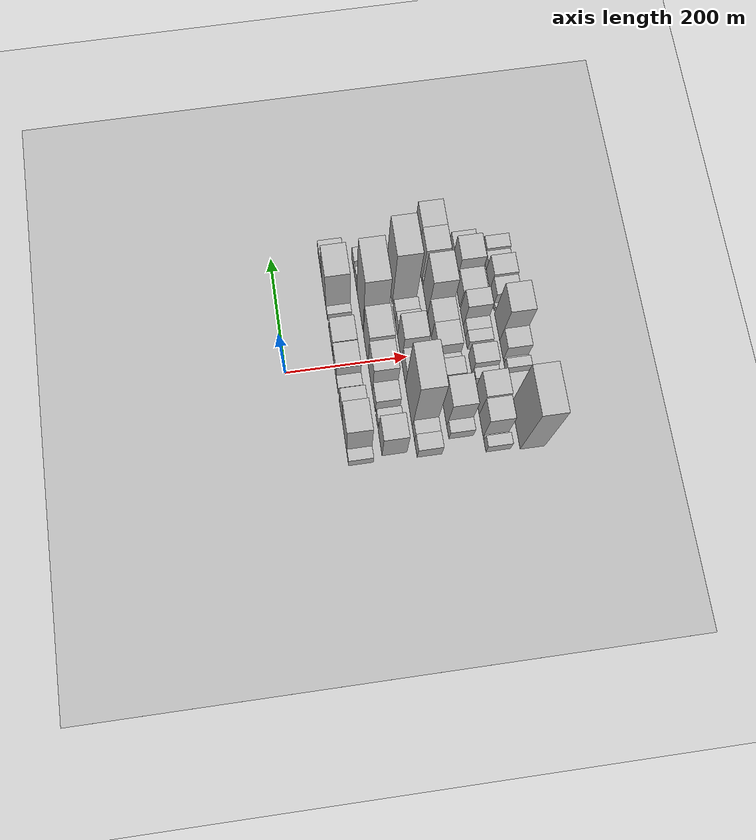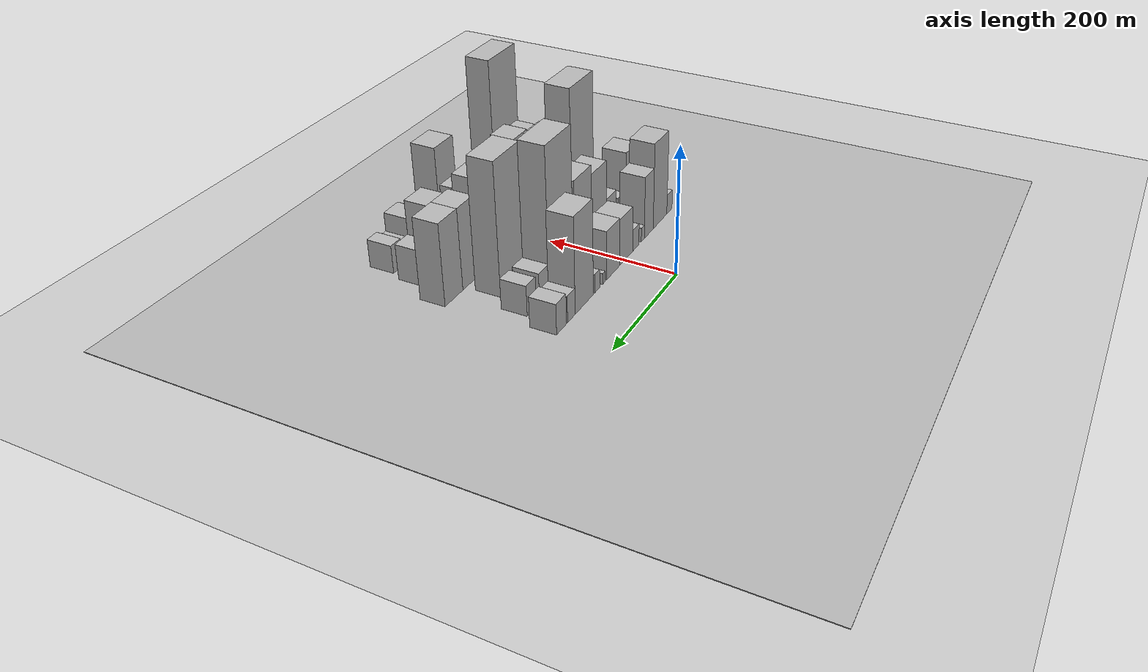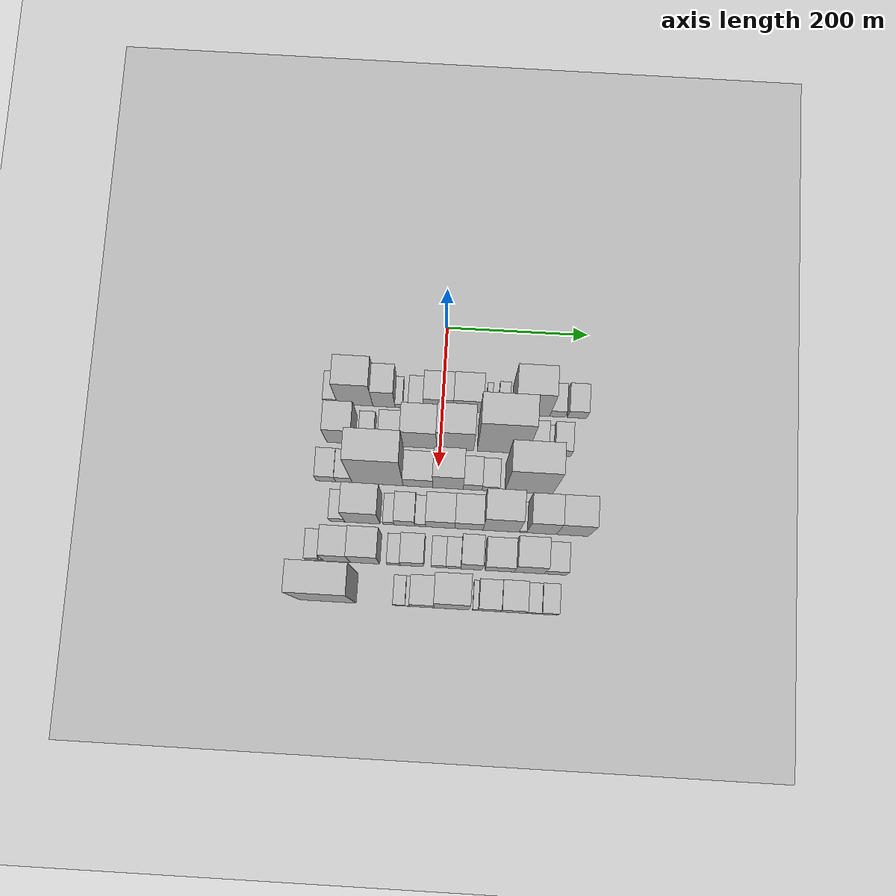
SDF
<sdf version="1.6">
 <world name="default">
  <include><name>ground_plane_1</name><uri>model://HANNAS_ground_plane</uri></include>
  <include>
   <name>ground_plane_2</name>
   <uri>model://HANNAS_ground_plane</uri>
   <pose>100 0 0  0 0 0</pose>
  </include>
  <model name="building_21">
   <static>1</static>
   <pose>100.0000 -156.7400 0 0.000000 0.000000 0.000000</pose>
   <link name="link">
    <pose>0 0 16.50 0 0 0</pose>
    <collision name="collision"><geometry><box><size>40.0000 19.6007 33.0000</size></box></geometry></collision>
    <visual name="visual">
     <cast_shadows>0</cast_shadows>
     <geometry><box><size>40.0000 19.6007 33.0000</size></box></geometry>
     <material>
      <script>
       <uri>model://HANNAS_wall/materials/scripts</uri>
       <uri>model://HANNAS_wall/materials/textures</uri>
       <name>vrc/HANNAS_wall</name>
      </script>
     </material>
    </visual>
   </link>
  </model>
  <model name="building_22">
   <static>1</static>
   <pose>100.0000 -122.1969 0 0.000000 0.000000 0.000000</pose>
   <link name="link">
    <pose>0 0 70.50 0 0 0</pose>
    <collision name="collision"><geometry><box><size>40.0000 49.4855 141.0000</size></box></geometry></collision>
    <visual name="visual">
     <cast_shadows>0</cast_shadows>
     <geometry><box><size>40.0000 49.4855 141.0000</size></box></geometry>
     <material>
      <script>
       <uri>model://HANNAS_wall/materials/scripts</uri>
       <uri>model://HANNAS_wall/materials/textures</uri>
       <name>vrc/HANNAS_wall</name>
      </script>
     </material>
    </visual>
   </link>
  </model>
  <model name="building_23">
   <static>1</static>
   <pose>100.0000 -81.7811 0 0.000000 0.000000 0.000000</pose>
   <link name="link">
    <pose>0 0 51.00 0 0 0</pose>
    <collision name="collision"><geometry><box><size>40.0000 31.3461 102.0000</size></box></geometry></collision>
    <visual name="visual">
     <cast_shadows>0</cast_shadows>
     <geometry><box><size>40.0000 31.3461 102.0000</size></box></geometry>
     <material>
      <script>
       <uri>model://HANNAS_wall/materials/scripts</uri>
       <uri>model://HANNAS_wall/materials/textures</uri>
       <name>vrc/HANNAS_wall</name>
      </script>
     </material>
    </visual>
   </link>
  </model>
  <model name="building_24">
   <static>1</static>
   <pose>100.0000 -60.7981 0 0.000000 0.000000 0.000000</pose>
   <link name="link">
    <pose>0 0 12.00 0 0 0</pose>
    <collision name="collision"><geometry><box><size>40.0000 10.6198 24.0000</size></box></geometry></collision>
    <visual name="visual">
     <cast_shadows>0</cast_shadows>
     <geometry><box><size>40.0000 10.6198 24.0000</size></box></geometry>
     <material>
      <script>
       <uri>model://HANNAS_wall/materials/scripts</uri>
       <uri>model://HANNAS_wall/materials/textures</uri>
       <name>vrc/HANNAS_wall</name>
      </script>
     </material>
    </visual>
   </link>
  </model>
  <model name="building_25">
   <static>1</static>
   <pose>100.0000 -36.8509 0 0.000000 0.000000 0.000000</pose>
   <link name="link">
    <pose>0 0 18.00 0 0 0</pose>
    <collision name="collision"><geometry><box><size>40.0000 21.2747 36.0000</size></box></geometry></collision>
    <visual name="visual">
     <cast_shadows>0</cast_shadows>
     <geometry><box><size>40.0000 21.2747 36.0000</size></box></geometry>
     <material>
      <script>
       <uri>model://HANNAS_wall/materials/scripts</uri>
       <uri>model://HANNAS_wall/materials/textures</uri>
       <name>vrc/HANNAS_wall</name>
      </script>
     </material>
    </visual>
   </link>
  </model>
  <model name="building_26">
   <static>1</static>
   <pose>100.0000 -5.1688 0 0.000000 0.000000 0.000000</pose>
   <link name="link">
    <pose>0 0 37.50 0 0 0</pose>
    <collision name="collision"><geometry><box><size>40.0000 42.0895 75.0000</size></box></geometry></collision>
    <visual name="visual">
     <cast_shadows>0</cast_shadows>
     <geometry><box><size>40.0000 42.0895 75.0000</size></box></geometry>
     <material>
      <script>
       <uri>model://HANNAS_wall/materials/scripts</uri>
       <uri>model://HANNAS_wall/materials/textures</uri>
       <name>vrc/HANNAS_wall</name>
      </script>
     </material>
    </visual>
   </link>
  </model>
  <model name="building_27">
   <static>1</static>
   <pose>100.0000 36.4722 0 0.000000 0.000000 0.000000</pose>
   <link name="link">
    <pose>0 0 39.00 0 0 0</pose>
    <collision name="collision"><geometry><box><size>40.0000 41.1924 78.0000</size></box></geometry></collision>
    <visual name="visual">
     <cast_shadows>0</cast_shadows>
     <geometry><box><size>40.0000 41.1924 78.0000</size></box></geometry>
     <material>
      <script>
       <uri>model://HANNAS_wall/materials/scripts</uri>
       <uri>model://HANNAS_wall/materials/textures</uri>
       <name>vrc/HANNAS_wall</name>
      </script>
     </material>
    </visual>
   </link>
  </model>
  <model name="building_28">
   <static>1</static>
   <pose>100.0000 66.0425 0 0.000000 0.000000 0.000000</pose>
   <link name="link">
    <pose>0 0 9.00 0 0 0</pose>
    <collision name="collision"><geometry><box><size>40.0000 7.9484 18.0000</size></box></geometry></collision>
    <visual name="visual">
     <cast_shadows>0</cast_shadows>
     <geometry><box><size>40.0000 7.9484 18.0000</size></box></geometry>
     <material>
      <script>
       <uri>model://HANNAS_wall/materials/scripts</uri>
       <uri>model://HANNAS_wall/materials/textures</uri>
       <name>vrc/HANNAS_wall</name>
      </script>
     </material>
    </visual>
   </link>
  </model>
  <model name="building_29">
   <static>1</static>
   <pose>100.0000 86.7288 0 0.000000 0.000000 0.000000</pose>
   <link name="link">
    <pose>0 0 15.00 0 0 0</pose>
    <collision name="collision"><geometry><box><size>40.0000 15.4241 30.0000</size></box></geometry></collision>
    <visual name="visual">
     <cast_shadows>0</cast_shadows>
     <geometry><box><size>40.0000 15.4241 30.0000</size></box></geometry>
     <material>
      <script>
       <uri>model://HANNAS_wall/materials/scripts</uri>
       <uri>model://HANNAS_wall/materials/textures</uri>
       <name>vrc/HANNAS_wall</name>
      </script>
     </material>
    </visual>
   </link>
  </model>
  <model name="building_30">
   <static>1</static>
   <pose>100.0000 124.8338 0 0.000000 0.000000 0.000000</pose>
   <link name="link">
    <pose>0 0 75.00 0 0 0</pose>
    <collision name="collision"><geometry><box><size>40.0000 52.7860 150.0000</size></box></geometry></collision>
    <visual name="visual">
     <cast_shadows>0</cast_shadows>
     <geometry><box><size>40.0000 52.7860 150.0000</size></box></geometry>
     <material>
      <script>
       <uri>model://HANNAS_wall/materials/scripts</uri>
       <uri>model://HANNAS_wall/materials/textures</uri>
       <name>vrc/HANNAS_wall</name>
      </script>
     </material>
    </visual>
   </link>
  </model>
  <model name="building_31">
   <static>1</static>
   <pose>100.0000 161.9882 0 0.000000 0.000000 0.000000</pose>
   <link name="link">
    <pose>0 0 21.00 0 0 0</pose>
    <collision name="collision"><geometry><box><size>40.0000 21.5227 42.0000</size></box></geometry></collision>
    <visual name="visual">
     <cast_shadows>0</cast_shadows>
     <geometry><box><size>40.0000 21.5227 42.0000</size></box></geometry>
     <material>
      <script>
       <uri>model://HANNAS_wall/materials/scripts</uri>
       <uri>model://HANNAS_wall/materials/textures</uri>
       <name>vrc/HANNAS_wall</name>
      </script>
     </material>
    </visual>
   </link>
  </model>
  <model name="building_32">
   <static>1</static>
   <pose>100.0000 189.4011 0 0.000000 0.000000 0.000000</pose>
   <link name="link">
    <pose>0 0 24.00 0 0 0</pose>
    <collision name="collision"><geometry><box><size>40.0000 27.3031 48.0000</size></box></geometry></collision>
    <visual name="visual">
     <cast_shadows>0</cast_shadows>
     <geometry><box><size>40.0000 27.3031 48.0000</size></box></geometry>
     <material>
      <script>
       <uri>model://HANNAS_wall/materials/scripts</uri>
       <uri>model://HANNAS_wall/materials/textures</uri>
       <name>vrc/HANNAS_wall</name>
      </script>
     </material>
    </visual>
   </link>
  </model>
  <model name="building_75">
   <static>1</static>
   <pose>155.0000 -138.2342 0 0.000000 0.000000 0.000000</pose>
   <link name="link">
    <pose>0 0 52.50 0 0 0</pose>
    <collision name="collision"><geometry><box><size>40.0000 39.4267 105.0000</size></box></geometry></collision>
    <visual name="visual">
     <cast_shadows>0</cast_shadows>
     <geometry><box><size>40.0000 39.4267 105.0000</size></box></geometry>
     <material>
      <script>
       <uri>model://HANNAS_wall/materials/scripts</uri>
       <uri>model://HANNAS_wall/materials/textures</uri>
       <name>vrc/HANNAS_wall</name>
      </script>
     </material>
    </visual>
   </link>
  </model>
  <model name="building_76">
   <static>1</static>
   <pose>155.0000 -101.8168 0 0.000000 0.000000 0.000000</pose>
   <link name="link">
    <pose>0 0 21.00 0 0 0</pose>
    <collision name="collision"><geometry><box><size>40.0000 21.4081 42.0000</size></box></geometry></collision>
    <visual name="visual">
     <cast_shadows>0</cast_shadows>
     <geometry><box><size>40.0000 21.4081 42.0000</size></box></geometry>
     <material>
      <script>
       <uri>model://HANNAS_wall/materials/scripts</uri>
       <uri>model://HANNAS_wall/materials/textures</uri>
       <name>vrc/HANNAS_wall</name>
      </script>
     </material>
    </visual>
   </link>
  </model>
  <model name="building_77">
   <static>1</static>
   <pose>155.0000 -69.0813 0 0.000000 0.000000 0.000000</pose>
   <link name="link">
    <pose>0 0 30.00 0 0 0</pose>
    <collision name="collision"><geometry><box><size>40.0000 32.0629 60.0000</size></box></geometry></collision>
    <visual name="visual">
     <cast_shadows>0</cast_shadows>
     <geometry><box><size>40.0000 32.0629 60.0000</size></box></geometry>
     <material>
      <script>
       <uri>model://HANNAS_wall/materials/scripts</uri>
       <uri>model://HANNAS_wall/materials/textures</uri>
       <name>vrc/HANNAS_wall</name>
      </script>
     </material>
    </visual>
   </link>
  </model>
  <model name="building_78">
   <static>1</static>
   <pose>155.0000 -28.9331 0 0.000000 0.000000 0.000000</pose>
   <link name="link">
    <pose>0 0 61.50 0 0 0</pose>
    <collision name="collision"><geometry><box><size>40.0000 48.2335 123.0000</size></box></geometry></collision>
    <visual name="visual">
     <cast_shadows>0</cast_shadows>
     <geometry><box><size>40.0000 48.2335 123.0000</size></box></geometry>
     <material>
      <script>
       <uri>model://HANNAS_wall/materials/scripts</uri>
       <uri>model://HANNAS_wall/materials/textures</uri>
       <name>vrc/HANNAS_wall</name>
      </script>
     </material>
    </visual>
   </link>
  </model>
  <model name="building_79">
   <static>1</static>
   <pose>155.0000 21.2462 0 0.000000 0.000000 0.000000</pose>
   <link name="link">
    <pose>0 0 69.00 0 0 0</pose>
    <collision name="collision"><geometry><box><size>40.0000 52.1251 138.0000</size></box></geometry></collision>
    <visual name="visual">
     <cast_shadows>0</cast_shadows>
     <geometry><box><size>40.0000 52.1251 138.0000</size></box></geometry>
     <material>
      <script>
       <uri>model://HANNAS_wall/materials/scripts</uri>
       <uri>model://HANNAS_wall/materials/textures</uri>
       <name>vrc/HANNAS_wall</name>
      </script>
     </material>
    </visual>
   </link>
  </model>
  <model name="building_80">
   <static>1</static>
   <pose>155.0000 87.5259 0 0.000000 0.000000 0.000000</pose>
   <link name="link">
    <pose>0 0 112.50 0 0 0</pose>
    <collision name="collision"><geometry><box><size>40.0000 70.4342 225.0000</size></box></geometry></collision>
    <visual name="visual">
     <cast_shadows>0</cast_shadows>
     <geometry><box><size>40.0000 70.4342 225.0000</size></box></geometry>
     <material>
      <script>
       <uri>model://HANNAS_wall/materials/scripts</uri>
       <uri>model://HANNAS_wall/materials/textures</uri>
       <name>vrc/HANNAS_wall</name>
      </script>
     </material>
    </visual>
   </link>
  </model>
  <model name="building_81">
   <static>1</static>
   <pose>155.0000 136.2333 0 0.000000 0.000000 0.000000</pose>
   <link name="link">
    <pose>0 0 24.00 0 0 0</pose>
    <collision name="collision"><geometry><box><size>40.0000 26.9808 48.0000</size></box></geometry></collision>
    <visual name="visual">
     <cast_shadows>0</cast_shadows>
     <geometry><box><size>40.0000 26.9808 48.0000</size></box></geometry>
     <material>
      <script>
       <uri>model://HANNAS_wall/materials/scripts</uri>
       <uri>model://HANNAS_wall/materials/textures</uri>
       <name>vrc/HANNAS_wall</name>
      </script>
     </material>
    </visual>
   </link>
  </model>
  <model name="building_82">
   <static>1</static>
   <pose>155.0000 154.0261 0 0.000000 0.000000 0.000000</pose>
   <link name="link">
    <pose>0 0 9.00 0 0 0</pose>
    <collision name="collision"><geometry><box><size>40.0000 8.6049 18.0000</size></box></geometry></collision>
    <visual name="visual">
     <cast_shadows>0</cast_shadows>
     <geometry><box><size>40.0000 8.6049 18.0000</size></box></geometry>
     <material>
      <script>
       <uri>model://HANNAS_wall/materials/scripts</uri>
       <uri>model://HANNAS_wall/materials/textures</uri>
       <name>vrc/HANNAS_wall</name>
      </script>
     </material>
    </visual>
   </link>
  </model>
  <model name="building_83">
   <static>1</static>
   <pose>155.0000 170.7109 0 0.000000 0.000000 0.000000</pose>
   <link name="link">
    <pose>0 0 24.00 0 0 0</pose>
    <collision name="collision"><geometry><box><size>40.0000 24.7646 48.0000</size></box></geometry></collision>
    <visual name="visual">
     <cast_shadows>0</cast_shadows>
     <geometry><box><size>40.0000 24.7646 48.0000</size></box></geometry>
     <material>
      <script>
       <uri>model://HANNAS_wall/materials/scripts</uri>
       <uri>model://HANNAS_wall/materials/textures</uri>
       <name>vrc/HANNAS_wall</name>
      </script>
     </material>
    </visual>
   </link>
  </model>
  <model name="building_131">
   <static>1</static>
   <pose>210.0000 -154.9184 0 0.000000 0.000000 0.000000</pose>
   <link name="link">
    <pose>0 0 24.00 0 0 0</pose>
    <collision name="collision"><geometry><box><size>40.0000 26.7618 48.0000</size></box></geometry></collision>
    <visual name="visual">
     <cast_shadows>0</cast_shadows>
     <geometry><box><size>40.0000 26.7618 48.0000</size></box></geometry>
     <material>
      <script>
       <uri>model://HANNAS_wall/materials/scripts</uri>
       <uri>model://HANNAS_wall/materials/textures</uri>
       <name>vrc/HANNAS_wall</name>
      </script>
     </material>
    </visual>
   </link>
  </model>
  <model name="building_132">
   <static>1</static>
   <pose>210.0000 -129.9310 0 0.000000 0.000000 0.000000</pose>
   <link name="link">
    <pose>0 0 22.50 0 0 0</pose>
    <collision name="collision"><geometry><box><size>40.0000 23.2130 45.0000</size></box></geometry></collision>
    <visual name="visual">
     <cast_shadows>0</cast_shadows>
     <geometry><box><size>40.0000 23.2130 45.0000</size></box></geometry>
     <material>
      <script>
       <uri>model://HANNAS_wall/materials/scripts</uri>
       <uri>model://HANNAS_wall/materials/textures</uri>
       <name>vrc/HANNAS_wall</name>
      </script>
     </material>
    </visual>
   </link>
  </model>
  <model name="building_133">
   <static>1</static>
   <pose>210.0000 -82.9242 0 0.000000 0.000000 0.000000</pose>
   <link name="link">
    <pose>0 0 112.50 0 0 0</pose>
    <collision name="collision"><geometry><box><size>40.0000 70.8005 225.0000</size></box></geometry></collision>
    <visual name="visual">
     <cast_shadows>0</cast_shadows>
     <geometry><box><size>40.0000 70.8005 225.0000</size></box></geometry>
     <material>
      <script>
       <uri>model://HANNAS_wall/materials/scripts</uri>
       <uri>model://HANNAS_wall/materials/textures</uri>
       <name>vrc/HANNAS_wall</name>
      </script>
     </material>
    </visual>
   </link>
  </model>
  <model name="building_134">
   <static>1</static>
   <pose>210.0000 -26.9606 0 0.000000 0.000000 0.000000</pose>
   <link name="link">
    <pose>0 0 34.50 0 0 0</pose>
    <collision name="collision"><geometry><box><size>40.0000 41.1267 69.0000</size></box></geometry></collision>
    <visual name="visual">
     <cast_shadows>0</cast_shadows>
     <geometry><box><size>40.0000 41.1267 69.0000</size></box></geometry>
     <material>
      <script>
       <uri>model://HANNAS_wall/materials/scripts</uri>
       <uri>model://HANNAS_wall/materials/textures</uri>
       <name>vrc/HANNAS_wall</name>
      </script>
     </material>
    </visual>
   </link>
  </model>
  <model name="building_135">
   <static>1</static>
   <pose>210.0000 14.7390 0 0.000000 0.000000 0.000000</pose>
   <link name="link">
    <pose>0 0 57.00 0 0 0</pose>
    <collision name="collision"><geometry><box><size>40.0000 42.2725 114.0000</size></box></geometry></collision>
    <visual name="visual">
     <cast_shadows>0</cast_shadows>
     <geometry><box><size>40.0000 42.2725 114.0000</size></box></geometry>
     <material>
      <script>
       <uri>model://HANNAS_wall/materials/scripts</uri>
       <uri>model://HANNAS_wall/materials/textures</uri>
       <name>vrc/HANNAS_wall</name>
      </script>
     </material>
    </visual>
   </link>
  </model>
  <model name="building_136">
   <static>1</static>
   <pose>210.0000 48.8920 0 0.000000 0.000000 0.000000</pose>
   <link name="link">
    <pose>0 0 25.50 0 0 0</pose>
    <collision name="collision"><geometry><box><size>40.0000 26.0336 51.0000</size></box></geometry></collision>
    <visual name="visual">
     <cast_shadows>0</cast_shadows>
     <geometry><box><size>40.0000 26.0336 51.0000</size></box></geometry>
     <material>
      <script>
       <uri>model://HANNAS_wall/materials/scripts</uri>
       <uri>model://HANNAS_wall/materials/textures</uri>
       <name>vrc/HANNAS_wall</name>
      </script>
     </material>
    </visual>
   </link>
  </model>
  <model name="building_137">
   <static>1</static>
   <pose>210.0000 73.8258 0 0.000000 0.000000 0.000000</pose>
   <link name="link">
    <pose>0 0 21.00 0 0 0</pose>
    <collision name="collision"><geometry><box><size>40.0000 23.8340 42.0000</size></box></geometry></collision>
    <visual name="visual">
     <cast_shadows>0</cast_shadows>
     <geometry><box><size>40.0000 23.8340 42.0000</size></box></geometry>
     <material>
      <script>
       <uri>model://HANNAS_wall/materials/scripts</uri>
       <uri>model://HANNAS_wall/materials/textures</uri>
       <name>vrc/HANNAS_wall</name>
      </script>
     </material>
    </visual>
   </link>
  </model>
  <model name="building_138">
   <static>1</static>
   <pose>210.0000 126.6699 0 0.000000 0.000000 0.000000</pose>
   <link name="link">
    <pose>0 0 103.50 0 0 0</pose>
    <collision name="collision"><geometry><box><size>40.0000 65.8541 207.0000</size></box></geometry></collision>
    <visual name="visual">
     <cast_shadows>0</cast_shadows>
     <geometry><box><size>40.0000 65.8541 207.0000</size></box></geometry>
     <material>
      <script>
       <uri>model://HANNAS_wall/materials/scripts</uri>
       <uri>model://HANNAS_wall/materials/textures</uri>
       <name>vrc/HANNAS_wall</name>
      </script>
     </material>
    </visual>
   </link>
  </model>
  <model name="building_183">
   <static>1</static>
   <pose>265.0000 -135.0966 0 0.000000 0.000000 0.000000</pose>
   <link name="link">
    <pose>0 0 19.50 0 0 0</pose>
    <collision name="collision"><geometry><box><size>40.0000 21.0661 39.0000</size></box></geometry></collision>
    <visual name="visual">
     <cast_shadows>0</cast_shadows>
     <geometry><box><size>40.0000 21.0661 39.0000</size></box></geometry>
     <material>
      <script>
       <uri>model://HANNAS_wall/materials/scripts</uri>
       <uri>model://HANNAS_wall/materials/textures</uri>
       <name>vrc/HANNAS_wall</name>
      </script>
     </material>
    </visual>
   </link>
  </model>
  <model name="building_184">
   <static>1</static>
   <pose>265.0000 -100.2189 0 0.000000 0.000000 0.000000</pose>
   <link name="link">
    <pose>0 0 61.50 0 0 0</pose>
    <collision name="collision"><geometry><box><size>40.0000 48.6892 123.0000</size></box></geometry></collision>
    <visual name="visual">
     <cast_shadows>0</cast_shadows>
     <geometry><box><size>40.0000 48.6892 123.0000</size></box></geometry>
     <material>
      <script>
       <uri>model://HANNAS_wall/materials/scripts</uri>
       <uri>model://HANNAS_wall/materials/textures</uri>
       <name>vrc/HANNAS_wall</name>
      </script>
     </material>
    </visual>
   </link>
  </model>
  <model name="building_185">
   <static>1</static>
   <pose>265.0000 -64.1938 0 0.000000 0.000000 0.000000</pose>
   <link name="link">
    <pose>0 0 15.00 0 0 0</pose>
    <collision name="collision"><geometry><box><size>40.0000 15.3611 30.0000</size></box></geometry></collision>
    <visual name="visual">
     <cast_shadows>0</cast_shadows>
     <geometry><box><size>40.0000 15.3611 30.0000</size></box></geometry>
     <material>
      <script>
       <uri>model://HANNAS_wall/materials/scripts</uri>
       <uri>model://HANNAS_wall/materials/textures</uri>
       <name>vrc/HANNAS_wall</name>
      </script>
     </material>
    </visual>
   </link>
  </model>
  <model name="building_186">
   <static>1</static>
   <pose>265.0000 -42.2328 0 0.000000 0.000000 0.000000</pose>
   <link name="link">
    <pose>0 0 28.50 0 0 0</pose>
    <collision name="collision"><geometry><box><size>40.0000 28.5609 57.0000</size></box></geometry></collision>
    <visual name="visual">
     <cast_shadows>0</cast_shadows>
     <geometry><box><size>40.0000 28.5609 57.0000</size></box></geometry>
     <material>
      <script>
       <uri>model://HANNAS_wall/materials/scripts</uri>
       <uri>model://HANNAS_wall/materials/textures</uri>
       <name>vrc/HANNAS_wall</name>
      </script>
     </material>
    </visual>
   </link>
  </model>
  <model name="building_187">
   <static>1</static>
   <pose>265.0000 -20.3630 0 0.000000 0.000000 0.000000</pose>
   <link name="link">
    <pose>0 0 15.00 0 0 0</pose>
    <collision name="collision"><geometry><box><size>40.0000 15.1787 30.0000</size></box></geometry></collision>
    <visual name="visual">
     <cast_shadows>0</cast_shadows>
     <geometry><box><size>40.0000 15.1787 30.0000</size></box></geometry>
     <material>
      <script>
       <uri>model://HANNAS_wall/materials/scripts</uri>
       <uri>model://HANNAS_wall/materials/textures</uri>
       <name>vrc/HANNAS_wall</name>
      </script>
     </material>
    </visual>
   </link>
  </model>
  <model name="building_188">
   <static>1</static>
   <pose>265.0000 7.2851 0 0.000000 0.000000 0.000000</pose>
   <link name="link">
    <pose>0 0 37.50 0 0 0</pose>
    <collision name="collision"><geometry><box><size>40.0000 40.1175 75.0000</size></box></geometry></collision>
    <visual name="visual">
     <cast_shadows>0</cast_shadows>
     <geometry><box><size>40.0000 40.1175 75.0000</size></box></geometry>
     <material>
      <script>
       <uri>model://HANNAS_wall/materials/scripts</uri>
       <uri>model://HANNAS_wall/materials/textures</uri>
       <name>vrc/HANNAS_wall</name>
      </script>
     </material>
    </visual>
   </link>
  </model>
  <model name="building_189">
   <static>1</static>
   <pose>265.0000 46.7945 0 0.000000 0.000000 0.000000</pose>
   <link name="link">
    <pose>0 0 37.50 0 0 0</pose>
    <collision name="collision"><geometry><box><size>40.0000 38.9014 75.0000</size></box></geometry></collision>
    <visual name="visual">
     <cast_shadows>0</cast_shadows>
     <geometry><box><size>40.0000 38.9014 75.0000</size></box></geometry>
     <material>
      <script>
       <uri>model://HANNAS_wall/materials/scripts</uri>
       <uri>model://HANNAS_wall/materials/textures</uri>
       <name>vrc/HANNAS_wall</name>
      </script>
     </material>
    </visual>
   </link>
  </model>
  <model name="building_190">
   <static>1</static>
   <pose>265.0000 91.2005 0 0.000000 0.000000 0.000000</pose>
   <link name="link">
    <pose>0 0 73.50 0 0 0</pose>
    <collision name="collision"><geometry><box><size>40.0000 49.9105 147.0000</size></box></geometry></collision>
    <visual name="visual">
     <cast_shadows>0</cast_shadows>
     <geometry><box><size>40.0000 49.9105 147.0000</size></box></geometry>
     <material>
      <script>
       <uri>model://HANNAS_wall/materials/scripts</uri>
       <uri>model://HANNAS_wall/materials/textures</uri>
       <name>vrc/HANNAS_wall</name>
      </script>
     </material>
    </visual>
   </link>
  </model>
  <model name="building_191">
   <static>1</static>
   <pose>265.0000 121.3634 0 0.000000 0.000000 0.000000</pose>
   <link name="link">
    <pose>0 0 10.50 0 0 0</pose>
    <collision name="collision"><geometry><box><size>40.0000 10.4152 21.0000</size></box></geometry></collision>
    <visual name="visual">
     <cast_shadows>0</cast_shadows>
     <geometry><box><size>40.0000 10.4152 21.0000</size></box></geometry>
     <material>
      <script>
       <uri>model://HANNAS_wall/materials/scripts</uri>
       <uri>model://HANNAS_wall/materials/textures</uri>
       <name>vrc/HANNAS_wall</name>
      </script>
     </material>
    </visual>
   </link>
  </model>
  <model name="building_192">
   <static>1</static>
   <pose>265.0000 147.1065 0 0.000000 0.000000 0.000000</pose>
   <link name="link">
    <pose>0 0 64.50 0 0 0</pose>
    <collision name="collision"><geometry><box><size>40.0000 41.0711 129.0000</size></box></geometry></collision>
    <visual name="visual">
     <cast_shadows>0</cast_shadows>
     <geometry><box><size>40.0000 41.0711 129.0000</size></box></geometry>
     <material>
      <script>
       <uri>model://HANNAS_wall/materials/scripts</uri>
       <uri>model://HANNAS_wall/materials/textures</uri>
       <name>vrc/HANNAS_wall</name>
      </script>
     </material>
    </visual>
   </link>
  </model>
  <model name="building_193">
   <static>1</static>
   <pose>265.0000 189.8728 0 0.000000 0.000000 0.000000</pose>
   <link name="link">
    <pose>0 0 64.50 0 0 0</pose>
    <collision name="collision"><geometry><box><size>40.0000 44.4615 129.0000</size></box></geometry></collision>
    <visual name="visual">
     <cast_shadows>0</cast_shadows>
     <geometry><box><size>40.0000 44.4615 129.0000</size></box></geometry>
     <material>
      <script>
       <uri>model://HANNAS_wall/materials/scripts</uri>
       <uri>model://HANNAS_wall/materials/textures</uri>
       <name>vrc/HANNAS_wall</name>
      </script>
     </material>
    </visual>
   </link>
  </model>
  <model name="building_235">
   <static>1</static>
   <pose>320.0000 -165.7263 0 0.000000 0.000000 0.000000</pose>
   <link name="link">
    <pose>0 0 18.00 0 0 0</pose>
    <collision name="collision"><geometry><box><size>40.0000 18.7418 36.0000</size></box></geometry></collision>
    <visual name="visual">
     <cast_shadows>0</cast_shadows>
     <geometry><box><size>40.0000 18.7418 36.0000</size></box></geometry>
     <material>
      <script>
       <uri>model://HANNAS_wall/materials/scripts</uri>
       <uri>model://HANNAS_wall/materials/textures</uri>
       <name>vrc/HANNAS_wall</name>
      </script>
     </material>
    </visual>
   </link>
  </model>
  <model name="building_236">
   <static>1</static>
   <pose>320.0000 -153.3191 0 0.000000 0.000000 0.000000</pose>
   <link name="link">
    <pose>0 0 7.50 0 0 0</pose>
    <collision name="collision"><geometry><box><size>40.0000 6.0725 15.0000</size></box></geometry></collision>
    <visual name="visual">
     <cast_shadows>0</cast_shadows>
     <geometry><box><size>40.0000 6.0725 15.0000</size></box></geometry>
     <material>
      <script>
       <uri>model://HANNAS_wall/materials/scripts</uri>
       <uri>model://HANNAS_wall/materials/textures</uri>
       <name>vrc/HANNAS_wall</name>
      </script>
     </material>
    </visual>
   </link>
  </model>
  <model name="building_237">
   <static>1</static>
   <pose>320.0000 -131.8091 0 0.000000 0.000000 0.000000</pose>
   <link name="link">
    <pose>0 0 51.00 0 0 0</pose>
    <collision name="collision"><geometry><box><size>40.0000 36.9474 102.0000</size></box></geometry></collision>
    <visual name="visual">
     <cast_shadows>0</cast_shadows>
     <geometry><box><size>40.0000 36.9474 102.0000</size></box></geometry>
     <material>
      <script>
       <uri>model://HANNAS_wall/materials/scripts</uri>
       <uri>model://HANNAS_wall/materials/textures</uri>
       <name>vrc/HANNAS_wall</name>
      </script>
     </material>
    </visual>
   </link>
  </model>
  <model name="building_238">
   <static>1</static>
   <pose>320.0000 -93.0062 0 0.000000 0.000000 0.000000</pose>
   <link name="link">
    <pose>0 0 55.50 0 0 0</pose>
    <collision name="collision"><geometry><box><size>40.0000 40.6584 111.0000</size></box></geometry></collision>
    <visual name="visual">
     <cast_shadows>0</cast_shadows>
     <geometry><box><size>40.0000 40.6584 111.0000</size></box></geometry>
     <material>
      <script>
       <uri>model://HANNAS_wall/materials/scripts</uri>
       <uri>model://HANNAS_wall/materials/textures</uri>
       <name>vrc/HANNAS_wall</name>
      </script>
     </material>
    </visual>
   </link>
  </model>
  <model name="building_239">
   <static>1</static>
   <pose>320.0000 -53.5583 0 0.000000 0.000000 0.000000</pose>
   <link name="link">
    <pose>0 0 18.00 0 0 0</pose>
    <collision name="collision"><geometry><box><size>40.0000 18.2373 36.0000</size></box></geometry></collision>
    <visual name="visual">
     <cast_shadows>0</cast_shadows>
     <geometry><box><size>40.0000 18.2373 36.0000</size></box></geometry>
     <material>
      <script>
       <uri>model://HANNAS_wall/materials/scripts</uri>
       <uri>model://HANNAS_wall/materials/textures</uri>
       <name>vrc/HANNAS_wall</name>
      </script>
     </material>
    </visual>
   </link>
  </model>
  <model name="building_240">
   <static>1</static>
   <pose>320.0000 -28.2362 0 0.000000 0.000000 0.000000</pose>
   <link name="link">
    <pose>0 0 30.00 0 0 0</pose>
    <collision name="collision"><geometry><box><size>40.0000 32.4070 60.0000</size></box></geometry></collision>
    <visual name="visual">
     <cast_shadows>0</cast_shadows>
     <geometry><box><size>40.0000 32.4070 60.0000</size></box></geometry>
     <material>
      <script>
       <uri>model://HANNAS_wall/materials/scripts</uri>
       <uri>model://HANNAS_wall/materials/textures</uri>
       <name>vrc/HANNAS_wall</name>
      </script>
     </material>
    </visual>
   </link>
  </model>
  <model name="building_241">
   <static>1</static>
   <pose>320.0000 8.0900 0 0.000000 0.000000 0.000000</pose>
   <link name="link">
    <pose>0 0 19.50 0 0 0</pose>
    <collision name="collision"><geometry><box><size>40.0000 20.2453 39.0000</size></box></geometry></collision>
    <visual name="visual">
     <cast_shadows>0</cast_shadows>
     <geometry><box><size>40.0000 20.2453 39.0000</size></box></geometry>
     <material>
      <script>
       <uri>model://HANNAS_wall/materials/scripts</uri>
       <uri>model://HANNAS_wall/materials/textures</uri>
       <name>vrc/HANNAS_wall</name>
      </script>
     </material>
    </visual>
   </link>
  </model>
  <model name="building_242">
   <static>1</static>
   <pose>320.0000 28.4199 0 0.000000 0.000000 0.000000</pose>
   <link name="link">
    <pose>0 0 19.50 0 0 0</pose>
    <collision name="collision"><geometry><box><size>40.0000 20.4146 39.0000</size></box></geometry></collision>
    <visual name="visual">
     <cast_shadows>0</cast_shadows>
     <geometry><box><size>40.0000 20.4146 39.0000</size></box></geometry>
     <material>
      <script>
       <uri>model://HANNAS_wall/materials/scripts</uri>
       <uri>model://HANNAS_wall/materials/textures</uri>
       <name>vrc/HANNAS_wall</name>
      </script>
     </material>
    </visual>
   </link>
  </model>
  <model name="building_243">
   <static>1</static>
   <pose>320.0000 53.2826 0 0.000000 0.000000 0.000000</pose>
   <link name="link">
    <pose>0 0 46.50 0 0 0</pose>
    <collision name="collision"><geometry><box><size>40.0000 29.3108 93.0000</size></box></geometry></collision>
    <visual name="visual">
     <cast_shadows>0</cast_shadows>
     <geometry><box><size>40.0000 29.3108 93.0000</size></box></geometry>
     <material>
      <script>
       <uri>model://HANNAS_wall/materials/scripts</uri>
       <uri>model://HANNAS_wall/materials/textures</uri>
       <name>vrc/HANNAS_wall</name>
      </script>
     </material>
    </visual>
   </link>
  </model>
  <model name="building_244">
   <static>1</static>
   <pose>320.0000 92.0011 0 0.000000 0.000000 0.000000</pose>
   <link name="link">
    <pose>0 0 36.00 0 0 0</pose>
    <collision name="collision"><geometry><box><size>40.0000 40.1263 72.0000</size></box></geometry></collision>
    <visual name="visual">
     <cast_shadows>0</cast_shadows>
     <geometry><box><size>40.0000 40.1263 72.0000</size></box></geometry>
     <material>
      <script>
       <uri>model://HANNAS_wall/materials/scripts</uri>
       <uri>model://HANNAS_wall/materials/textures</uri>
       <name>vrc/HANNAS_wall</name>
      </script>
     </material>
    </visual>
   </link>
  </model>
  <model name="building_245">
   <static>1</static>
   <pose>320.0000 132.6036 0 0.000000 0.000000 0.000000</pose>
   <link name="link">
    <pose>0 0 55.50 0 0 0</pose>
    <collision name="collision"><geometry><box><size>40.0000 41.0786 111.0000</size></box></geometry></collision>
    <visual name="visual">
     <cast_shadows>0</cast_shadows>
     <geometry><box><size>40.0000 41.0786 111.0000</size></box></geometry>
     <material>
      <script>
       <uri>model://HANNAS_wall/materials/scripts</uri>
       <uri>model://HANNAS_wall/materials/textures</uri>
       <name>vrc/HANNAS_wall</name>
      </script>
     </material>
    </visual>
   </link>
  </model>
  <model name="building_246">
   <static>1</static>
   <pose>320.0000 168.3394 0 0.000000 0.000000 0.000000</pose>
   <link name="link">
    <pose>0 0 28.50 0 0 0</pose>
    <collision name="collision"><geometry><box><size>40.0000 30.3929 57.0000</size></box></geometry></collision>
    <visual name="visual">
     <cast_shadows>0</cast_shadows>
     <geometry><box><size>40.0000 30.3929 57.0000</size></box></geometry>
     <material>
      <script>
       <uri>model://HANNAS_wall/materials/scripts</uri>
       <uri>model://HANNAS_wall/materials/textures</uri>
       <name>vrc/HANNAS_wall</name>
      </script>
     </material>
    </visual>
   </link>
  </model>
  <model name="building_287">
   <static>1</static>
   <pose>375.0000 -139.8372 0 0.000000 0.000000 0.000000</pose>
   <link name="link">
    <pose>0 0 108.00 0 0 0</pose>
    <collision name="collision"><geometry><box><size>40.0000 76.9717 216.0000</size></box></geometry></collision>
    <visual name="visual">
     <cast_shadows>0</cast_shadows>
     <geometry><box><size>40.0000 76.9717 216.0000</size></box></geometry>
     <material>
      <script>
       <uri>model://HANNAS_wall/materials/scripts</uri>
       <uri>model://HANNAS_wall/materials/textures</uri>
       <name>vrc/HANNAS_wall</name>
      </script>
     </material>
    </visual>
   </link>
  </model>
  <model name="building_288">
   <static>1</static>
   <pose>375.0000 -42.4320 0 0.000000 0.000000 0.000000</pose>
   <link name="link">
    <pose>0 0 15.00 0 0 0</pose>
    <collision name="collision"><geometry><box><size>40.0000 16.6129 30.0000</size></box></geometry></collision>
    <visual name="visual">
     <cast_shadows>0</cast_shadows>
     <geometry><box><size>40.0000 16.6129 30.0000</size></box></geometry>
     <material>
      <script>
       <uri>model://HANNAS_wall/materials/scripts</uri>
       <uri>model://HANNAS_wall/materials/textures</uri>
       <name>vrc/HANNAS_wall</name>
      </script>
     </material>
    </visual>
   </link>
  </model>
  <model name="building_289">
   <static>1</static>
   <pose>375.0000 -30.9467 0 0.000000 0.000000 0.000000</pose>
   <link name="link">
    <pose>0 0 7.50 0 0 0</pose>
    <collision name="collision"><geometry><box><size>40.0000 6.3576 15.0000</size></box></geometry></collision>
    <visual name="visual">
     <cast_shadows>0</cast_shadows>
     <geometry><box><size>40.0000 6.3576 15.0000</size></box></geometry>
     <material>
      <script>
       <uri>model://HANNAS_wall/materials/scripts</uri>
       <uri>model://HANNAS_wall/materials/textures</uri>
       <name>vrc/HANNAS_wall</name>
      </script>
     </material>
    </visual>
   </link>
  </model>
  <model name="building_290">
   <static>1</static>
   <pose>375.0000 -11.1629 0 0.000000 0.000000 0.000000</pose>
   <link name="link">
    <pose>0 0 31.50 0 0 0</pose>
    <collision name="collision"><geometry><box><size>40.0000 33.2102 63.0000</size></box></geometry></collision>
    <visual name="visual">
     <cast_shadows>0</cast_shadows>
     <geometry><box><size>40.0000 33.2102 63.0000</size></box></geometry>
     <material>
      <script>
       <uri>model://HANNAS_wall/materials/scripts</uri>
       <uri>model://HANNAS_wall/materials/textures</uri>
       <name>vrc/HANNAS_wall</name>
      </script>
     </material>
    </visual>
   </link>
  </model>
  <model name="building_291">
   <static>1</static>
   <pose>375.0000 29.2215 0 0.000000 0.000000 0.000000</pose>
   <link name="link">
    <pose>0 0 70.50 0 0 0</pose>
    <collision name="collision"><geometry><box><size>40.0000 47.5585 141.0000</size></box></geometry></collision>
    <visual name="visual">
     <cast_shadows>0</cast_shadows>
     <geometry><box><size>40.0000 47.5585 141.0000</size></box></geometry>
     <material>
      <script>
       <uri>model://HANNAS_wall/materials/scripts</uri>
       <uri>model://HANNAS_wall/materials/textures</uri>
       <name>vrc/HANNAS_wall</name>
      </script>
     </material>
    </visual>
   </link>
  </model>
  <model name="building_292">
   <static>1</static>
   <pose>375.0000 61.7957 0 0.000000 0.000000 0.000000</pose>
   <link name="link">
    <pose>0 0 9.00 0 0 0</pose>
    <collision name="collision"><geometry><box><size>40.0000 7.5899 18.0000</size></box></geometry></collision>
    <visual name="visual">
     <cast_shadows>0</cast_shadows>
     <geometry><box><size>40.0000 7.5899 18.0000</size></box></geometry>
     <material>
      <script>
       <uri>model://HANNAS_wall/materials/scripts</uri>
       <uri>model://HANNAS_wall/materials/textures</uri>
       <name>vrc/HANNAS_wall</name>
      </script>
     </material>
    </visual>
   </link>
  </model>
  <model name="building_293">
   <static>1</static>
   <pose>375.0000 80.8778 0 0.000000 0.000000 0.000000</pose>
   <link name="link">
    <pose>0 0 28.50 0 0 0</pose>
    <collision name="collision"><geometry><box><size>40.0000 30.5742 57.0000</size></box></geometry></collision>
    <visual name="visual">
     <cast_shadows>0</cast_shadows>
     <geometry><box><size>40.0000 30.5742 57.0000</size></box></geometry>
     <material>
      <script>
       <uri>model://HANNAS_wall/materials/scripts</uri>
       <uri>model://HANNAS_wall/materials/textures</uri>
       <name>vrc/HANNAS_wall</name>
      </script>
     </material>
    </visual>
   </link>
  </model>
  <model name="building_294">
   <static>1</static>
   <pose>375.0000 113.4291 0 0.000000 0.000000 0.000000</pose>
   <link name="link">
    <pose>0 0 33.00 0 0 0</pose>
    <collision name="collision"><geometry><box><size>40.0000 34.5285 66.0000</size></box></geometry></collision>
    <visual name="visual">
     <cast_shadows>0</cast_shadows>
     <geometry><box><size>40.0000 34.5285 66.0000</size></box></geometry>
     <material>
      <script>
       <uri>model://HANNAS_wall/materials/scripts</uri>
       <uri>model://HANNAS_wall/materials/textures</uri>
       <name>vrc/HANNAS_wall</name>
      </script>
     </material>
    </visual>
   </link>
  </model>
  <model name="building_295">
   <static>1</static>
   <pose>375.0000 140.7612 0 0.000000 0.000000 0.000000</pose>
   <link name="link">
    <pose>0 0 18.00 0 0 0</pose>
    <collision name="collision"><geometry><box><size>40.0000 20.1356 36.0000</size></box></geometry></collision>
    <visual name="visual">
     <cast_shadows>0</cast_shadows>
     <geometry><box><size>40.0000 20.1356 36.0000</size></box></geometry>
     <material>
      <script>
       <uri>model://HANNAS_wall/materials/scripts</uri>
       <uri>model://HANNAS_wall/materials/textures</uri>
       <name>vrc/HANNAS_wall</name>
      </script>
     </material>
    </visual>
   </link>
  </model>
  <model name="building_296">
   <static>1</static>
   <pose>375.0000 162.4131 0 0.000000 0.000000 0.000000</pose>
   <link name="link">
    <pose>0 0 22.50 0 0 0</pose>
    <collision name="collision"><geometry><box><size>40.0000 23.1682 45.0000</size></box></geometry></collision>
    <visual name="visual">
     <cast_shadows>0</cast_shadows>
     <geometry><box><size>40.0000 23.1682 45.0000</size></box></geometry>
     <material>
      <script>
       <uri>model://HANNAS_wall/materials/scripts</uri>
       <uri>model://HANNAS_wall/materials/textures</uri>
       <name>vrc/HANNAS_wall</name>
      </script>
     </material>
    </visual>
   </link>
  </model>
 </world>
</sdf>
